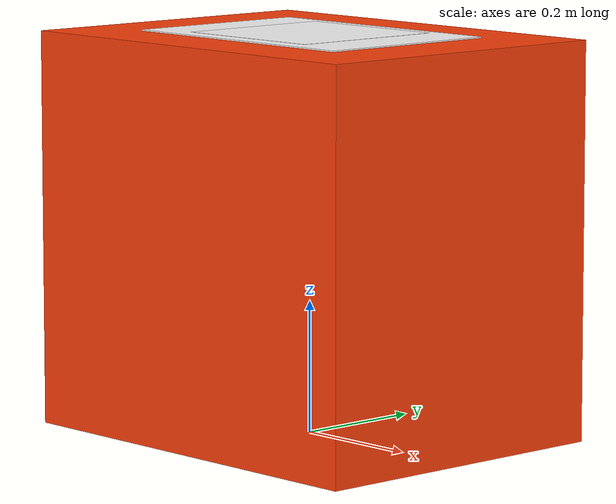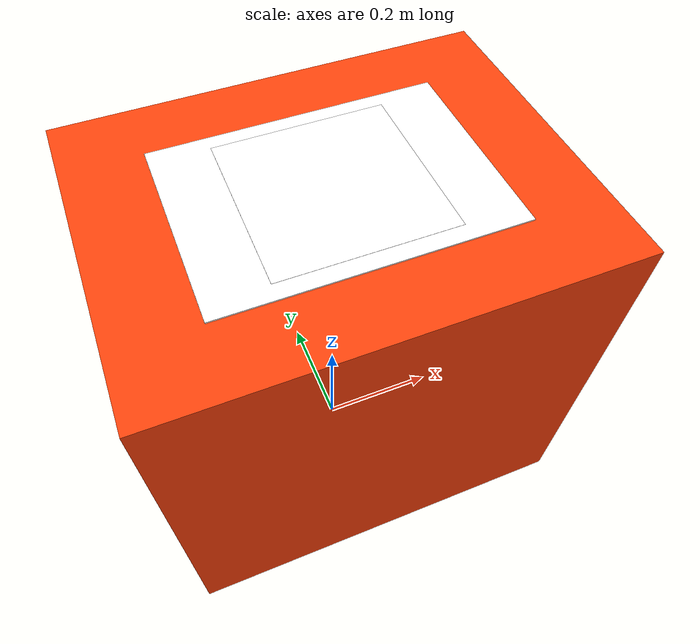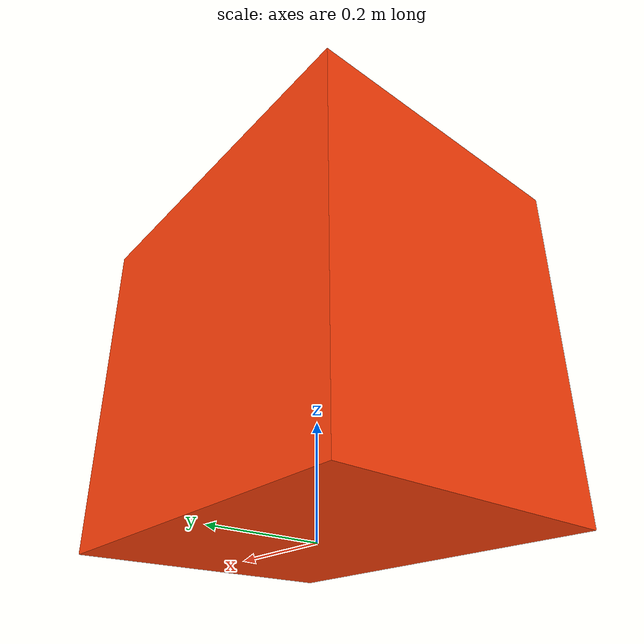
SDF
<?xml version='1.0' encoding='utf-8'?>
<sdf version="1.8">
  <model name="intelligence_cache">
    <static>true</static>
    <link name="cache">
      <visual name="container">
        <pose>0 0 0.3 0 0 0</pose>
        <geometry>
          <box>
            <size>0.65 0.5 0.6</size>
          </box>
        </geometry>
        <material>
          <ambient>1 0.25 0.04 1</ambient>
          <diffuse>1 0.25 0.04 1</diffuse>
        </material>
      </visual>
      <collision name="container_collision">
        <pose>0 0 0.3 0 0 0</pose>
        <geometry>
          <box>
            <size>0.65 0.5 0.6</size>
          </box>
        </geometry>
      </collision>
      <visual name="a3_sheet">
        <pose>0 0 0.602 0 0 0</pose>
        <geometry>
          <box>
            <size>0.420 0.297 0.002</size>
          </box>
        </geometry>
        <material>
          <ambient>1 1 1 1</ambient>
          <diffuse>1 1 1 1</diffuse>
        </material>
      </visual>
      <visual name="qr">
        <pose>0 0 0.604 0 0 0</pose>
        <cast_shadows>false</cast_shadows>
        <geometry>
          <plane>
            <normal>0 0 1</normal>
            <size>0.25 0.25</size>
          </plane>
        </geometry>
        <material>
          <ambient>1 1 1 1</ambient>
          <diffuse>1 1 1 1</diffuse>
          <pbr>
            <metal>
              <albedo_map>model://intelligence_cache/materials/textures/qr.png</albedo_map>
              <metalness>0</metalness>
              <roughness>1</roughness>
            </metal>
          </pbr>
        </material>
      </visual>
    </link>
  </model>
</sdf>
